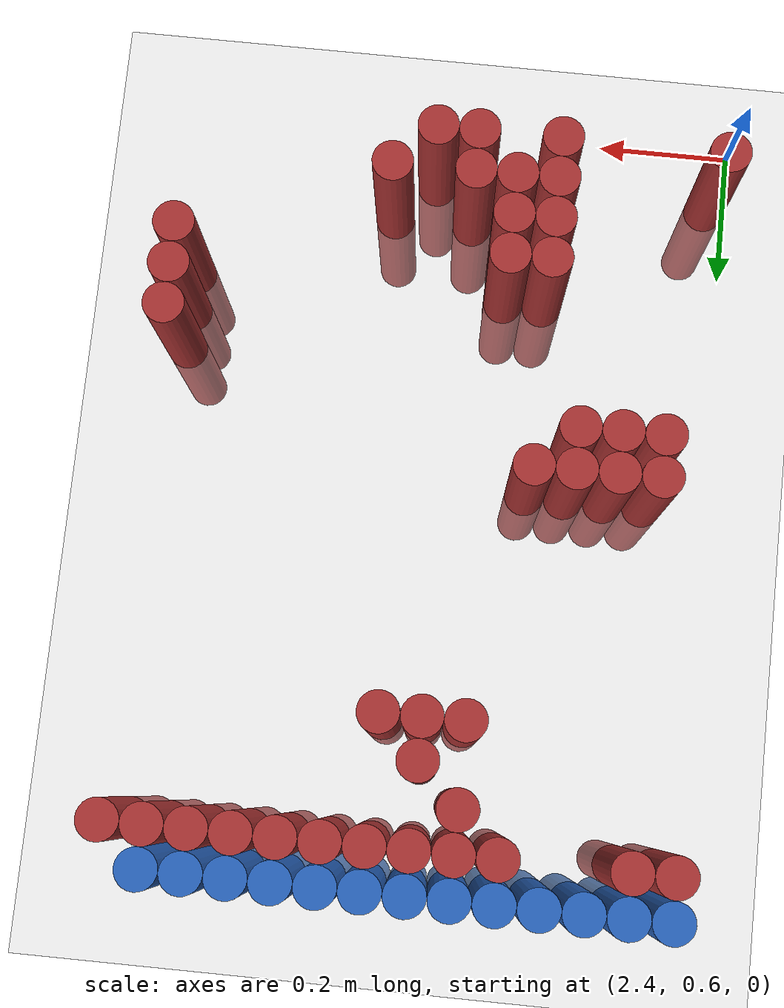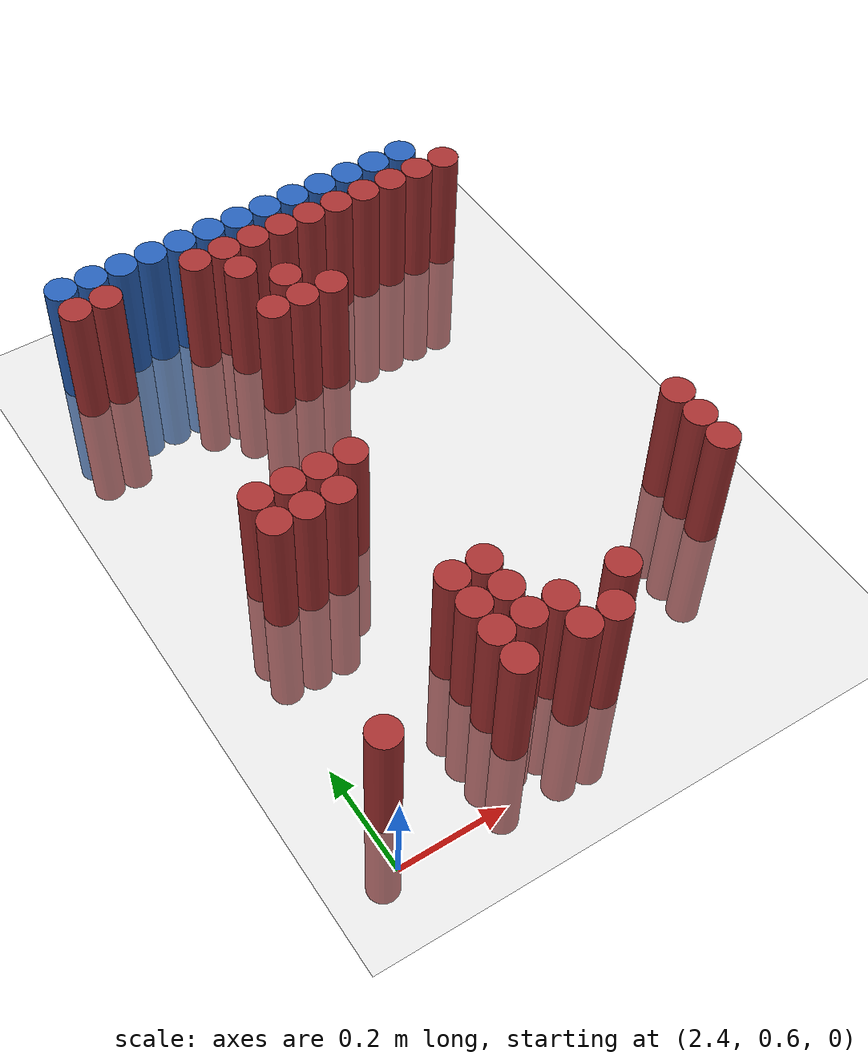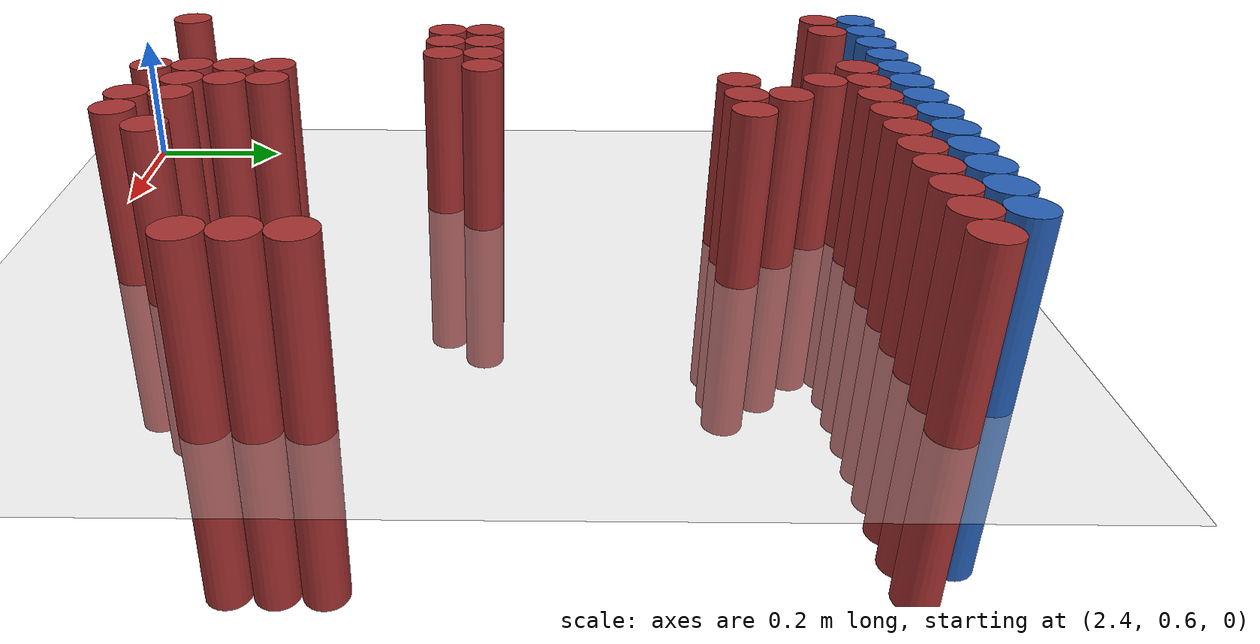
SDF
<sdf version="1.6">
 <world name="default">
  <model name="ground_plane">
   <static>1</static>
   <link name="link">
    <collision name="collision">
     <geometry><plane><normal>0 0 1</normal><size>100 100</size></plane></geometry>
     <surface><friction><ode><mu>100</mu><mu2>50</mu2></ode></friction></surface>
    </collision>
    <visual name="visual">
     <cast_shadows>0</cast_shadows>
     <geometry><plane><normal>0 0 1</normal><size>100 100</size></plane></geometry>
     <material>
      <script><uri>file://media/materials/scripts/gazebo.material</uri><name>Gazebo/Grey</name></script>
     </material>
    </visual>
   </link>
  </model>
  <model name="unit_cylinder_101">
   <static>1</static>
   <pose>2.430000 1.770000 0.000000 0.000000 0.000000 0.000000</pose>
   <link name="link">
    <inertial>
     <mass>1</mass>
     <inertia><ixx>0.145833</ixx><ixy>0</ixy><ixz>0</ixz><iyy>0.145833</iyy><iyz>0</iyz><izz>0.125</izz></inertia>
    </inertial>
    <collision name="collision">
     <geometry><cylinder><radius>0.030000</radius><length>0.5</length></cylinder></geometry>
    </collision>
    <visual name="visual">
     <geometry><cylinder><radius>0.030000</radius><length>0.5</length></cylinder></geometry>
     <material>
      <ambient>0.152000 0.379000 0.720000 1</ambient>
      <diffuse>0.152000 0.379000 0.720000 1</diffuse>
     </material>
     <material>
      <script><name>Gazebo/Grey</name><uri>file://media/materials/scripts/gazebo.material</uri></script>
     </material>
    </visual>
   </link>
  </model>
  <model name="unit_cylinder_102">
   <static>1</static>
   <pose>2.490000 1.770000 0.000000 0.000000 0.000000 0.000000</pose>
   <link name="link">
    <inertial>
     <mass>1</mass>
     <inertia><ixx>0.145833</ixx><ixy>0</ixy><ixz>0</ixz><iyy>0.145833</iyy><iyz>0</iyz><izz>0.125</izz></inertia>
    </inertial>
    <collision name="collision">
     <geometry><cylinder><radius>0.030000</radius><length>0.5</length></cylinder></geometry>
    </collision>
    <visual name="visual">
     <geometry><cylinder><radius>0.030000</radius><length>0.5</length></cylinder></geometry>
     <material>
      <ambient>0.152000 0.379000 0.720000 1</ambient>
      <diffuse>0.152000 0.379000 0.720000 1</diffuse>
     </material>
     <material>
      <script><name>Gazebo/Grey</name><uri>file://media/materials/scripts/gazebo.material</uri></script>
     </material>
    </visual>
   </link>
  </model>
  <model name="unit_cylinder_103">
   <static>1</static>
   <pose>2.550000 1.770000 0.000000 0.000000 0.000000 0.000000</pose>
   <link name="link">
    <inertial>
     <mass>1</mass>
     <inertia><ixx>0.145833</ixx><ixy>0</ixy><ixz>0</ixz><iyy>0.145833</iyy><iyz>0</iyz><izz>0.125</izz></inertia>
    </inertial>
    <collision name="collision">
     <geometry><cylinder><radius>0.030000</radius><length>0.5</length></cylinder></geometry>
    </collision>
    <visual name="visual">
     <geometry><cylinder><radius>0.030000</radius><length>0.5</length></cylinder></geometry>
     <material>
      <ambient>0.152000 0.379000 0.720000 1</ambient>
      <diffuse>0.152000 0.379000 0.720000 1</diffuse>
     </material>
     <material>
      <script><name>Gazebo/Grey</name><uri>file://media/materials/scripts/gazebo.material</uri></script>
     </material>
    </visual>
   </link>
  </model>
  <model name="unit_cylinder_104">
   <static>1</static>
   <pose>2.610000 1.770000 0.000000 0.000000 0.000000 0.000000</pose>
   <link name="link">
    <inertial>
     <mass>1</mass>
     <inertia><ixx>0.145833</ixx><ixy>0</ixy><ixz>0</ixz><iyy>0.145833</iyy><iyz>0</iyz><izz>0.125</izz></inertia>
    </inertial>
    <collision name="collision">
     <geometry><cylinder><radius>0.030000</radius><length>0.5</length></cylinder></geometry>
    </collision>
    <visual name="visual">
     <geometry><cylinder><radius>0.030000</radius><length>0.5</length></cylinder></geometry>
     <material>
      <ambient>0.152000 0.379000 0.720000 1</ambient>
      <diffuse>0.152000 0.379000 0.720000 1</diffuse>
     </material>
     <material>
      <script><name>Gazebo/Grey</name><uri>file://media/materials/scripts/gazebo.material</uri></script>
     </material>
    </visual>
   </link>
  </model>
  <model name="unit_cylinder_105">
   <static>1</static>
   <pose>2.670000 1.770000 0.000000 0.000000 0.000000 0.000000</pose>
   <link name="link">
    <inertial>
     <mass>1</mass>
     <inertia><ixx>0.145833</ixx><ixy>0</ixy><ixz>0</ixz><iyy>0.145833</iyy><iyz>0</iyz><izz>0.125</izz></inertia>
    </inertial>
    <collision name="collision">
     <geometry><cylinder><radius>0.030000</radius><length>0.5</length></cylinder></geometry>
    </collision>
    <visual name="visual">
     <geometry><cylinder><radius>0.030000</radius><length>0.5</length></cylinder></geometry>
     <material>
      <ambient>0.152000 0.379000 0.720000 1</ambient>
      <diffuse>0.152000 0.379000 0.720000 1</diffuse>
     </material>
     <material>
      <script><name>Gazebo/Grey</name><uri>file://media/materials/scripts/gazebo.material</uri></script>
     </material>
    </visual>
   </link>
  </model>
  <model name="unit_cylinder_106">
   <static>1</static>
   <pose>2.730000 1.770000 0.000000 0.000000 0.000000 0.000000</pose>
   <link name="link">
    <inertial>
     <mass>1</mass>
     <inertia><ixx>0.145833</ixx><ixy>0</ixy><ixz>0</ixz><iyy>0.145833</iyy><iyz>0</iyz><izz>0.125</izz></inertia>
    </inertial>
    <collision name="collision">
     <geometry><cylinder><radius>0.030000</radius><length>0.5</length></cylinder></geometry>
    </collision>
    <visual name="visual">
     <geometry><cylinder><radius>0.030000</radius><length>0.5</length></cylinder></geometry>
     <material>
      <ambient>0.152000 0.379000 0.720000 1</ambient>
      <diffuse>0.152000 0.379000 0.720000 1</diffuse>
     </material>
     <material>
      <script><name>Gazebo/Grey</name><uri>file://media/materials/scripts/gazebo.material</uri></script>
     </material>
    </visual>
   </link>
  </model>
  <model name="unit_cylinder_107">
   <static>1</static>
   <pose>2.790000 1.770000 0.000000 0.000000 0.000000 0.000000</pose>
   <link name="link">
    <inertial>
     <mass>1</mass>
     <inertia><ixx>0.145833</ixx><ixy>0</ixy><ixz>0</ixz><iyy>0.145833</iyy><iyz>0</iyz><izz>0.125</izz></inertia>
    </inertial>
    <collision name="collision">
     <geometry><cylinder><radius>0.030000</radius><length>0.5</length></cylinder></geometry>
    </collision>
    <visual name="visual">
     <geometry><cylinder><radius>0.030000</radius><length>0.5</length></cylinder></geometry>
     <material>
      <ambient>0.152000 0.379000 0.720000 1</ambient>
      <diffuse>0.152000 0.379000 0.720000 1</diffuse>
     </material>
     <material>
      <script><name>Gazebo/Grey</name><uri>file://media/materials/scripts/gazebo.material</uri></script>
     </material>
    </visual>
   </link>
  </model>
  <model name="unit_cylinder_108">
   <static>1</static>
   <pose>2.850000 1.770000 0.000000 0.000000 0.000000 0.000000</pose>
   <link name="link">
    <inertial>
     <mass>1</mass>
     <inertia><ixx>0.145833</ixx><ixy>0</ixy><ixz>0</ixz><iyy>0.145833</iyy><iyz>0</iyz><izz>0.125</izz></inertia>
    </inertial>
    <collision name="collision">
     <geometry><cylinder><radius>0.030000</radius><length>0.5</length></cylinder></geometry>
    </collision>
    <visual name="visual">
     <geometry><cylinder><radius>0.030000</radius><length>0.5</length></cylinder></geometry>
     <material>
      <ambient>0.152000 0.379000 0.720000 1</ambient>
      <diffuse>0.152000 0.379000 0.720000 1</diffuse>
     </material>
     <material>
      <script><name>Gazebo/Grey</name><uri>file://media/materials/scripts/gazebo.material</uri></script>
     </material>
    </visual>
   </link>
  </model>
  <model name="unit_cylinder_109">
   <static>1</static>
   <pose>2.910000 1.770000 0.000000 0.000000 0.000000 0.000000</pose>
   <link name="link">
    <inertial>
     <mass>1</mass>
     <inertia><ixx>0.145833</ixx><ixy>0</ixy><ixz>0</ixz><iyy>0.145833</iyy><iyz>0</iyz><izz>0.125</izz></inertia>
    </inertial>
    <collision name="collision">
     <geometry><cylinder><radius>0.030000</radius><length>0.5</length></cylinder></geometry>
    </collision>
    <visual name="visual">
     <geometry><cylinder><radius>0.030000</radius><length>0.5</length></cylinder></geometry>
     <material>
      <ambient>0.152000 0.379000 0.720000 1</ambient>
      <diffuse>0.152000 0.379000 0.720000 1</diffuse>
     </material>
     <material>
      <script><name>Gazebo/Grey</name><uri>file://media/materials/scripts/gazebo.material</uri></script>
     </material>
    </visual>
   </link>
  </model>
  <model name="unit_cylinder_110">
   <static>1</static>
   <pose>2.970000 1.770000 0.000000 0.000000 0.000000 0.000000</pose>
   <link name="link">
    <inertial>
     <mass>1</mass>
     <inertia><ixx>0.145833</ixx><ixy>0</ixy><ixz>0</ixz><iyy>0.145833</iyy><iyz>0</iyz><izz>0.125</izz></inertia>
    </inertial>
    <collision name="collision">
     <geometry><cylinder><radius>0.030000</radius><length>0.5</length></cylinder></geometry>
    </collision>
    <visual name="visual">
     <geometry><cylinder><radius>0.030000</radius><length>0.5</length></cylinder></geometry>
     <material>
      <ambient>0.152000 0.379000 0.720000 1</ambient>
      <diffuse>0.152000 0.379000 0.720000 1</diffuse>
     </material>
     <material>
      <script><name>Gazebo/Grey</name><uri>file://media/materials/scripts/gazebo.material</uri></script>
     </material>
    </visual>
   </link>
  </model>
  <model name="unit_cylinder_111">
   <static>1</static>
   <pose>3.030000 1.770000 0.000000 0.000000 0.000000 0.000000</pose>
   <link name="link">
    <inertial>
     <mass>1</mass>
     <inertia><ixx>0.145833</ixx><ixy>0</ixy><ixz>0</ixz><iyy>0.145833</iyy><iyz>0</iyz><izz>0.125</izz></inertia>
    </inertial>
    <collision name="collision">
     <geometry><cylinder><radius>0.030000</radius><length>0.5</length></cylinder></geometry>
    </collision>
    <visual name="visual">
     <geometry><cylinder><radius>0.030000</radius><length>0.5</length></cylinder></geometry>
     <material>
      <ambient>0.152000 0.379000 0.720000 1</ambient>
      <diffuse>0.152000 0.379000 0.720000 1</diffuse>
     </material>
     <material>
      <script><name>Gazebo/Grey</name><uri>file://media/materials/scripts/gazebo.material</uri></script>
     </material>
    </visual>
   </link>
  </model>
  <model name="unit_cylinder_112">
   <static>1</static>
   <pose>3.090000 1.770000 0.000000 0.000000 0.000000 0.000000</pose>
   <link name="link">
    <inertial>
     <mass>1</mass>
     <inertia><ixx>0.145833</ixx><ixy>0</ixy><ixz>0</ixz><iyy>0.145833</iyy><iyz>0</iyz><izz>0.125</izz></inertia>
    </inertial>
    <collision name="collision">
     <geometry><cylinder><radius>0.030000</radius><length>0.5</length></cylinder></geometry>
    </collision>
    <visual name="visual">
     <geometry><cylinder><radius>0.030000</radius><length>0.5</length></cylinder></geometry>
     <material>
      <ambient>0.152000 0.379000 0.720000 1</ambient>
      <diffuse>0.152000 0.379000 0.720000 1</diffuse>
     </material>
     <material>
      <script><name>Gazebo/Grey</name><uri>file://media/materials/scripts/gazebo.material</uri></script>
     </material>
    </visual>
   </link>
  </model>
  <model name="unit_cylinder_113">
   <static>1</static>
   <pose>3.150000 1.770000 0.000000 0.000000 0.000000 0.000000</pose>
   <link name="link">
    <inertial>
     <mass>1</mass>
     <inertia><ixx>0.145833</ixx><ixy>0</ixy><ixz>0</ixz><iyy>0.145833</iyy><iyz>0</iyz><izz>0.125</izz></inertia>
    </inertial>
    <collision name="collision">
     <geometry><cylinder><radius>0.030000</radius><length>0.5</length></cylinder></geometry>
    </collision>
    <visual name="visual">
     <geometry><cylinder><radius>0.030000</radius><length>0.5</length></cylinder></geometry>
     <material>
      <ambient>0.152000 0.379000 0.720000 1</ambient>
      <diffuse>0.152000 0.379000 0.720000 1</diffuse>
     </material>
     <material>
      <script><name>Gazebo/Grey</name><uri>file://media/materials/scripts/gazebo.material</uri></script>
     </material>
    </visual>
   </link>
  </model>
  <model name="unit_cylinder_130">
   <static>1</static>
   <pose>2.430000 1.710000 0.000000 0.000000 0.000000 0.000000</pose>
   <link name="link">
    <inertial>
     <mass>1</mass>
     <inertia><ixx>0.145833</ixx><ixy>0</ixy><ixz>0</ixz><iyy>0.145833</iyy><iyz>0</iyz><izz>0.125</izz></inertia>
    </inertial>
    <collision name="collision">
     <geometry><cylinder><radius>0.030000</radius><length>0.5</length></cylinder></geometry>
    </collision>
    <visual name="visual">
     <geometry><cylinder><radius>0.030000</radius><length>0.5</length></cylinder></geometry>
     <material>
      <ambient>0.648000 0.192000 0.192000 1</ambient>
      <diffuse>0.648000 0.192000 0.192000 1</diffuse>
     </material>
     <material>
      <script><name>Gazebo/Grey</name><uri>file://media/materials/scripts/gazebo.material</uri></script>
     </material>
    </visual>
   </link>
  </model>
  <model name="unit_cylinder_131">
   <static>1</static>
   <pose>2.490000 1.710000 0.000000 0.000000 0.000000 0.000000</pose>
   <link name="link">
    <inertial>
     <mass>1</mass>
     <inertia><ixx>0.145833</ixx><ixy>0</ixy><ixz>0</ixz><iyy>0.145833</iyy><iyz>0</iyz><izz>0.125</izz></inertia>
    </inertial>
    <collision name="collision">
     <geometry><cylinder><radius>0.030000</radius><length>0.5</length></cylinder></geometry>
    </collision>
    <visual name="visual">
     <geometry><cylinder><radius>0.030000</radius><length>0.5</length></cylinder></geometry>
     <material>
      <ambient>0.648000 0.192000 0.192000 1</ambient>
      <diffuse>0.648000 0.192000 0.192000 1</diffuse>
     </material>
     <material>
      <script><name>Gazebo/Grey</name><uri>file://media/materials/scripts/gazebo.material</uri></script>
     </material>
    </visual>
   </link>
  </model>
  <model name="unit_cylinder_132">
   <static>1</static>
   <pose>2.670000 1.710000 0.000000 0.000000 0.000000 0.000000</pose>
   <link name="link">
    <inertial>
     <mass>1</mass>
     <inertia><ixx>0.145833</ixx><ixy>0</ixy><ixz>0</ixz><iyy>0.145833</iyy><iyz>0</iyz><izz>0.125</izz></inertia>
    </inertial>
    <collision name="collision">
     <geometry><cylinder><radius>0.030000</radius><length>0.5</length></cylinder></geometry>
    </collision>
    <visual name="visual">
     <geometry><cylinder><radius>0.030000</radius><length>0.5</length></cylinder></geometry>
     <material>
      <ambient>0.648000 0.192000 0.192000 1</ambient>
      <diffuse>0.648000 0.192000 0.192000 1</diffuse>
     </material>
     <material>
      <script><name>Gazebo/Grey</name><uri>file://media/materials/scripts/gazebo.material</uri></script>
     </material>
    </visual>
   </link>
  </model>
  <model name="unit_cylinder_133">
   <static>1</static>
   <pose>2.730000 1.710000 0.000000 0.000000 0.000000 0.000000</pose>
   <link name="link">
    <inertial>
     <mass>1</mass>
     <inertia><ixx>0.145833</ixx><ixy>0</ixy><ixz>0</ixz><iyy>0.145833</iyy><iyz>0</iyz><izz>0.125</izz></inertia>
    </inertial>
    <collision name="collision">
     <geometry><cylinder><radius>0.030000</radius><length>0.5</length></cylinder></geometry>
    </collision>
    <visual name="visual">
     <geometry><cylinder><radius>0.030000</radius><length>0.5</length></cylinder></geometry>
     <material>
      <ambient>0.648000 0.192000 0.192000 1</ambient>
      <diffuse>0.648000 0.192000 0.192000 1</diffuse>
     </material>
     <material>
      <script><name>Gazebo/Grey</name><uri>file://media/materials/scripts/gazebo.material</uri></script>
     </material>
    </visual>
   </link>
  </model>
  <model name="unit_cylinder_134">
   <static>1</static>
   <pose>2.790000 1.710000 0.000000 0.000000 0.000000 0.000000</pose>
   <link name="link">
    <inertial>
     <mass>1</mass>
     <inertia><ixx>0.145833</ixx><ixy>0</ixy><ixz>0</ixz><iyy>0.145833</iyy><iyz>0</iyz><izz>0.125</izz></inertia>
    </inertial>
    <collision name="collision">
     <geometry><cylinder><radius>0.030000</radius><length>0.5</length></cylinder></geometry>
    </collision>
    <visual name="visual">
     <geometry><cylinder><radius>0.030000</radius><length>0.5</length></cylinder></geometry>
     <material>
      <ambient>0.648000 0.192000 0.192000 1</ambient>
      <diffuse>0.648000 0.192000 0.192000 1</diffuse>
     </material>
     <material>
      <script><name>Gazebo/Grey</name><uri>file://media/materials/scripts/gazebo.material</uri></script>
     </material>
    </visual>
   </link>
  </model>
  <model name="unit_cylinder_135">
   <static>1</static>
   <pose>2.850000 1.710000 0.000000 0.000000 0.000000 0.000000</pose>
   <link name="link">
    <inertial>
     <mass>1</mass>
     <inertia><ixx>0.145833</ixx><ixy>0</ixy><ixz>0</ixz><iyy>0.145833</iyy><iyz>0</iyz><izz>0.125</izz></inertia>
    </inertial>
    <collision name="collision">
     <geometry><cylinder><radius>0.030000</radius><length>0.5</length></cylinder></geometry>
    </collision>
    <visual name="visual">
     <geometry><cylinder><radius>0.030000</radius><length>0.5</length></cylinder></geometry>
     <material>
      <ambient>0.648000 0.192000 0.192000 1</ambient>
      <diffuse>0.648000 0.192000 0.192000 1</diffuse>
     </material>
     <material>
      <script><name>Gazebo/Grey</name><uri>file://media/materials/scripts/gazebo.material</uri></script>
     </material>
    </visual>
   </link>
  </model>
  <model name="unit_cylinder_136">
   <static>1</static>
   <pose>2.910000 1.710000 0.000000 0.000000 0.000000 0.000000</pose>
   <link name="link">
    <inertial>
     <mass>1</mass>
     <inertia><ixx>0.145833</ixx><ixy>0</ixy><ixz>0</ixz><iyy>0.145833</iyy><iyz>0</iyz><izz>0.125</izz></inertia>
    </inertial>
    <collision name="collision">
     <geometry><cylinder><radius>0.030000</radius><length>0.5</length></cylinder></geometry>
    </collision>
    <visual name="visual">
     <geometry><cylinder><radius>0.030000</radius><length>0.5</length></cylinder></geometry>
     <material>
      <ambient>0.648000 0.192000 0.192000 1</ambient>
      <diffuse>0.648000 0.192000 0.192000 1</diffuse>
     </material>
     <material>
      <script><name>Gazebo/Grey</name><uri>file://media/materials/scripts/gazebo.material</uri></script>
     </material>
    </visual>
   </link>
  </model>
  <model name="unit_cylinder_137">
   <static>1</static>
   <pose>2.970000 1.710000 0.000000 0.000000 0.000000 0.000000</pose>
   <link name="link">
    <inertial>
     <mass>1</mass>
     <inertia><ixx>0.145833</ixx><ixy>0</ixy><ixz>0</ixz><iyy>0.145833</iyy><iyz>0</iyz><izz>0.125</izz></inertia>
    </inertial>
    <collision name="collision">
     <geometry><cylinder><radius>0.030000</radius><length>0.5</length></cylinder></geometry>
    </collision>
    <visual name="visual">
     <geometry><cylinder><radius>0.030000</radius><length>0.5</length></cylinder></geometry>
     <material>
      <ambient>0.648000 0.192000 0.192000 1</ambient>
      <diffuse>0.648000 0.192000 0.192000 1</diffuse>
     </material>
     <material>
      <script><name>Gazebo/Grey</name><uri>file://media/materials/scripts/gazebo.material</uri></script>
     </material>
    </visual>
   </link>
  </model>
  <model name="unit_cylinder_138">
   <static>1</static>
   <pose>3.030000 1.710000 0.000000 0.000000 0.000000 0.000000</pose>
   <link name="link">
    <inertial>
     <mass>1</mass>
     <inertia><ixx>0.145833</ixx><ixy>0</ixy><ixz>0</ixz><iyy>0.145833</iyy><iyz>0</iyz><izz>0.125</izz></inertia>
    </inertial>
    <collision name="collision">
     <geometry><cylinder><radius>0.030000</radius><length>0.5</length></cylinder></geometry>
    </collision>
    <visual name="visual">
     <geometry><cylinder><radius>0.030000</radius><length>0.5</length></cylinder></geometry>
     <material>
      <ambient>0.648000 0.192000 0.192000 1</ambient>
      <diffuse>0.648000 0.192000 0.192000 1</diffuse>
     </material>
     <material>
      <script><name>Gazebo/Grey</name><uri>file://media/materials/scripts/gazebo.material</uri></script>
     </material>
    </visual>
   </link>
  </model>
  <model name="unit_cylinder_139">
   <static>1</static>
   <pose>3.090000 1.710000 0.000000 0.000000 0.000000 0.000000</pose>
   <link name="link">
    <inertial>
     <mass>1</mass>
     <inertia><ixx>0.145833</ixx><ixy>0</ixy><ixz>0</ixz><iyy>0.145833</iyy><iyz>0</iyz><izz>0.125</izz></inertia>
    </inertial>
    <collision name="collision">
     <geometry><cylinder><radius>0.030000</radius><length>0.5</length></cylinder></geometry>
    </collision>
    <visual name="visual">
     <geometry><cylinder><radius>0.030000</radius><length>0.5</length></cylinder></geometry>
     <material>
      <ambient>0.648000 0.192000 0.192000 1</ambient>
      <diffuse>0.648000 0.192000 0.192000 1</diffuse>
     </material>
     <material>
      <script><name>Gazebo/Grey</name><uri>file://media/materials/scripts/gazebo.material</uri></script>
     </material>
    </visual>
   </link>
  </model>
  <model name="unit_cylinder_140">
   <static>1</static>
   <pose>3.150000 1.710000 0.000000 0.000000 0.000000 0.000000</pose>
   <link name="link">
    <inertial>
     <mass>1</mass>
     <inertia><ixx>0.145833</ixx><ixy>0</ixy><ixz>0</ixz><iyy>0.145833</iyy><iyz>0</iyz><izz>0.125</izz></inertia>
    </inertial>
    <collision name="collision">
     <geometry><cylinder><radius>0.030000</radius><length>0.5</length></cylinder></geometry>
    </collision>
    <visual name="visual">
     <geometry><cylinder><radius>0.030000</radius><length>0.5</length></cylinder></geometry>
     <material>
      <ambient>0.648000 0.192000 0.192000 1</ambient>
      <diffuse>0.648000 0.192000 0.192000 1</diffuse>
     </material>
     <material>
      <script><name>Gazebo/Grey</name><uri>file://media/materials/scripts/gazebo.material</uri></script>
     </material>
    </visual>
   </link>
  </model>
  <model name="unit_cylinder_141">
   <static>1</static>
   <pose>3.210000 1.710000 0.000000 0.000000 0.000000 0.000000</pose>
   <link name="link">
    <inertial>
     <mass>1</mass>
     <inertia><ixx>0.145833</ixx><ixy>0</ixy><ixz>0</ixz><iyy>0.145833</iyy><iyz>0</iyz><izz>0.125</izz></inertia>
    </inertial>
    <collision name="collision">
     <geometry><cylinder><radius>0.030000</radius><length>0.5</length></cylinder></geometry>
    </collision>
    <visual name="visual">
     <geometry><cylinder><radius>0.030000</radius><length>0.5</length></cylinder></geometry>
     <material>
      <ambient>0.648000 0.192000 0.192000 1</ambient>
      <diffuse>0.648000 0.192000 0.192000 1</diffuse>
     </material>
     <material>
      <script><name>Gazebo/Grey</name><uri>file://media/materials/scripts/gazebo.material</uri></script>
     </material>
    </visual>
   </link>
  </model>
  <model name="unit_cylinder_145">
   <static>1</static>
   <pose>2.730000 1.650000 0.000000 0.000000 0.000000 0.000000</pose>
   <link name="link">
    <inertial>
     <mass>1</mass>
     <inertia><ixx>0.145833</ixx><ixy>0</ixy><ixz>0</ixz><iyy>0.145833</iyy><iyz>0</iyz><izz>0.125</izz></inertia>
    </inertial>
    <collision name="collision">
     <geometry><cylinder><radius>0.030000</radius><length>0.5</length></cylinder></geometry>
    </collision>
    <visual name="visual">
     <geometry><cylinder><radius>0.030000</radius><length>0.5</length></cylinder></geometry>
     <material>
      <ambient>0.648000 0.192000 0.192000 1</ambient>
      <diffuse>0.648000 0.192000 0.192000 1</diffuse>
     </material>
     <material>
      <script><name>Gazebo/Grey</name><uri>file://media/materials/scripts/gazebo.material</uri></script>
     </material>
    </visual>
   </link>
  </model>
  <model name="unit_cylinder_147">
   <static>1</static>
   <pose>2.790000 1.590000 0.000000 0.000000 0.000000 0.000000</pose>
   <link name="link">
    <inertial>
     <mass>1</mass>
     <inertia><ixx>0.145833</ixx><ixy>0</ixy><ixz>0</ixz><iyy>0.145833</iyy><iyz>0</iyz><izz>0.125</izz></inertia>
    </inertial>
    <collision name="collision">
     <geometry><cylinder><radius>0.030000</radius><length>0.5</length></cylinder></geometry>
    </collision>
    <visual name="visual">
     <geometry><cylinder><radius>0.030000</radius><length>0.5</length></cylinder></geometry>
     <material>
      <ambient>0.648000 0.192000 0.192000 1</ambient>
      <diffuse>0.648000 0.192000 0.192000 1</diffuse>
     </material>
     <material>
      <script><name>Gazebo/Grey</name><uri>file://media/materials/scripts/gazebo.material</uri></script>
     </material>
    </visual>
   </link>
  </model>
  <model name="unit_cylinder_150">
   <static>1</static>
   <pose>2.730000 1.530000 0.000000 0.000000 0.000000 0.000000</pose>
   <link name="link">
    <inertial>
     <mass>1</mass>
     <inertia><ixx>0.145833</ixx><ixy>0</ixy><ixz>0</ixz><iyy>0.145833</iyy><iyz>0</iyz><izz>0.125</izz></inertia>
    </inertial>
    <collision name="collision">
     <geometry><cylinder><radius>0.030000</radius><length>0.5</length></cylinder></geometry>
    </collision>
    <visual name="visual">
     <geometry><cylinder><radius>0.030000</radius><length>0.5</length></cylinder></geometry>
     <material>
      <ambient>0.648000 0.192000 0.192000 1</ambient>
      <diffuse>0.648000 0.192000 0.192000 1</diffuse>
     </material>
     <material>
      <script><name>Gazebo/Grey</name><uri>file://media/materials/scripts/gazebo.material</uri></script>
     </material>
    </visual>
   </link>
  </model>
  <model name="unit_cylinder_151">
   <static>1</static>
   <pose>2.790000 1.530000 0.000000 0.000000 0.000000 0.000000</pose>
   <link name="link">
    <inertial>
     <mass>1</mass>
     <inertia><ixx>0.145833</ixx><ixy>0</ixy><ixz>0</ixz><iyy>0.145833</iyy><iyz>0</iyz><izz>0.125</izz></inertia>
    </inertial>
    <collision name="collision">
     <geometry><cylinder><radius>0.030000</radius><length>0.5</length></cylinder></geometry>
    </collision>
    <visual name="visual">
     <geometry><cylinder><radius>0.030000</radius><length>0.5</length></cylinder></geometry>
     <material>
      <ambient>0.648000 0.192000 0.192000 1</ambient>
      <diffuse>0.648000 0.192000 0.192000 1</diffuse>
     </material>
     <material>
      <script><name>Gazebo/Grey</name><uri>file://media/materials/scripts/gazebo.material</uri></script>
     </material>
    </visual>
   </link>
  </model>
  <model name="unit_cylinder_152">
   <static>1</static>
   <pose>2.850000 1.530000 0.000000 0.000000 0.000000 0.000000</pose>
   <link name="link">
    <inertial>
     <mass>1</mass>
     <inertia><ixx>0.145833</ixx><ixy>0</ixy><ixz>0</ixz><iyy>0.145833</iyy><iyz>0</iyz><izz>0.125</izz></inertia>
    </inertial>
    <collision name="collision">
     <geometry><cylinder><radius>0.030000</radius><length>0.5</length></cylinder></geometry>
    </collision>
    <visual name="visual">
     <geometry><cylinder><radius>0.030000</radius><length>0.5</length></cylinder></geometry>
     <material>
      <ambient>0.648000 0.192000 0.192000 1</ambient>
      <diffuse>0.648000 0.192000 0.192000 1</diffuse>
     </material>
     <material>
      <script><name>Gazebo/Grey</name><uri>file://media/materials/scripts/gazebo.material</uri></script>
     </material>
    </visual>
   </link>
  </model>
  <model name="unit_cylinder_161">
   <static>1</static>
   <pose>2.490000 1.170000 0.000000 0.000000 0.000000 0.000000</pose>
   <link name="link">
    <inertial>
     <mass>1</mass>
     <inertia><ixx>0.145833</ixx><ixy>0</ixy><ixz>0</ixz><iyy>0.145833</iyy><iyz>0</iyz><izz>0.125</izz></inertia>
    </inertial>
    <collision name="collision">
     <geometry><cylinder><radius>0.030000</radius><length>0.5</length></cylinder></geometry>
    </collision>
    <visual name="visual">
     <geometry><cylinder><radius>0.030000</radius><length>0.5</length></cylinder></geometry>
     <material>
      <ambient>0.648000 0.192000 0.192000 1</ambient>
      <diffuse>0.648000 0.192000 0.192000 1</diffuse>
     </material>
     <material>
      <script><name>Gazebo/Grey</name><uri>file://media/materials/scripts/gazebo.material</uri></script>
     </material>
    </visual>
   </link>
  </model>
  <model name="unit_cylinder_162">
   <static>1</static>
   <pose>2.550000 1.170000 0.000000 0.000000 0.000000 0.000000</pose>
   <link name="link">
    <inertial>
     <mass>1</mass>
     <inertia><ixx>0.145833</ixx><ixy>0</ixy><ixz>0</ixz><iyy>0.145833</iyy><iyz>0</iyz><izz>0.125</izz></inertia>
    </inertial>
    <collision name="collision">
     <geometry><cylinder><radius>0.030000</radius><length>0.5</length></cylinder></geometry>
    </collision>
    <visual name="visual">
     <geometry><cylinder><radius>0.030000</radius><length>0.5</length></cylinder></geometry>
     <material>
      <ambient>0.648000 0.192000 0.192000 1</ambient>
      <diffuse>0.648000 0.192000 0.192000 1</diffuse>
     </material>
     <material>
      <script><name>Gazebo/Grey</name><uri>file://media/materials/scripts/gazebo.material</uri></script>
     </material>
    </visual>
   </link>
  </model>
  <model name="unit_cylinder_163">
   <static>1</static>
   <pose>2.610000 1.170000 0.000000 0.000000 0.000000 0.000000</pose>
   <link name="link">
    <inertial>
     <mass>1</mass>
     <inertia><ixx>0.145833</ixx><ixy>0</ixy><ixz>0</ixz><iyy>0.145833</iyy><iyz>0</iyz><izz>0.125</izz></inertia>
    </inertial>
    <collision name="collision">
     <geometry><cylinder><radius>0.030000</radius><length>0.5</length></cylinder></geometry>
    </collision>
    <visual name="visual">
     <geometry><cylinder><radius>0.030000</radius><length>0.5</length></cylinder></geometry>
     <material>
      <ambient>0.648000 0.192000 0.192000 1</ambient>
      <diffuse>0.648000 0.192000 0.192000 1</diffuse>
     </material>
     <material>
      <script><name>Gazebo/Grey</name><uri>file://media/materials/scripts/gazebo.material</uri></script>
     </material>
    </visual>
   </link>
  </model>
  <model name="unit_cylinder_164">
   <static>1</static>
   <pose>2.670000 1.170000 0.000000 0.000000 0.000000 0.000000</pose>
   <link name="link">
    <inertial>
     <mass>1</mass>
     <inertia><ixx>0.145833</ixx><ixy>0</ixy><ixz>0</ixz><iyy>0.145833</iyy><iyz>0</iyz><izz>0.125</izz></inertia>
    </inertial>
    <collision name="collision">
     <geometry><cylinder><radius>0.030000</radius><length>0.5</length></cylinder></geometry>
    </collision>
    <visual name="visual">
     <geometry><cylinder><radius>0.030000</radius><length>0.5</length></cylinder></geometry>
     <material>
      <ambient>0.648000 0.192000 0.192000 1</ambient>
      <diffuse>0.648000 0.192000 0.192000 1</diffuse>
     </material>
     <material>
      <script><name>Gazebo/Grey</name><uri>file://media/materials/scripts/gazebo.material</uri></script>
     </material>
    </visual>
   </link>
  </model>
  <model name="unit_cylinder_167">
   <static>1</static>
   <pose>2.490000 1.110000 0.000000 0.000000 0.000000 0.000000</pose>
   <link name="link">
    <inertial>
     <mass>1</mass>
     <inertia><ixx>0.145833</ixx><ixy>0</ixy><ixz>0</ixz><iyy>0.145833</iyy><iyz>0</iyz><izz>0.125</izz></inertia>
    </inertial>
    <collision name="collision">
     <geometry><cylinder><radius>0.030000</radius><length>0.5</length></cylinder></geometry>
    </collision>
    <visual name="visual">
     <geometry><cylinder><radius>0.030000</radius><length>0.5</length></cylinder></geometry>
     <material>
      <ambient>0.648000 0.192000 0.192000 1</ambient>
      <diffuse>0.648000 0.192000 0.192000 1</diffuse>
     </material>
     <material>
      <script><name>Gazebo/Grey</name><uri>file://media/materials/scripts/gazebo.material</uri></script>
     </material>
    </visual>
   </link>
  </model>
  <model name="unit_cylinder_168">
   <static>1</static>
   <pose>2.550000 1.110000 0.000000 0.000000 0.000000 0.000000</pose>
   <link name="link">
    <inertial>
     <mass>1</mass>
     <inertia><ixx>0.145833</ixx><ixy>0</ixy><ixz>0</ixz><iyy>0.145833</iyy><iyz>0</iyz><izz>0.125</izz></inertia>
    </inertial>
    <collision name="collision">
     <geometry><cylinder><radius>0.030000</radius><length>0.5</length></cylinder></geometry>
    </collision>
    <visual name="visual">
     <geometry><cylinder><radius>0.030000</radius><length>0.5</length></cylinder></geometry>
     <material>
      <ambient>0.648000 0.192000 0.192000 1</ambient>
      <diffuse>0.648000 0.192000 0.192000 1</diffuse>
     </material>
     <material>
      <script><name>Gazebo/Grey</name><uri>file://media/materials/scripts/gazebo.material</uri></script>
     </material>
    </visual>
   </link>
  </model>
  <model name="unit_cylinder_169">
   <static>1</static>
   <pose>2.610000 1.110000 0.000000 0.000000 0.000000 0.000000</pose>
   <link name="link">
    <inertial>
     <mass>1</mass>
     <inertia><ixx>0.145833</ixx><ixy>0</ixy><ixz>0</ixz><iyy>0.145833</iyy><iyz>0</iyz><izz>0.125</izz></inertia>
    </inertial>
    <collision name="collision">
     <geometry><cylinder><radius>0.030000</radius><length>0.5</length></cylinder></geometry>
    </collision>
    <visual name="visual">
     <geometry><cylinder><radius>0.030000</radius><length>0.5</length></cylinder></geometry>
     <material>
      <ambient>0.648000 0.192000 0.192000 1</ambient>
      <diffuse>0.648000 0.192000 0.192000 1</diffuse>
     </material>
     <material>
      <script><name>Gazebo/Grey</name><uri>file://media/materials/scripts/gazebo.material</uri></script>
     </material>
    </visual>
   </link>
  </model>
  <model name="unit_cylinder_176">
   <static>1</static>
   <pose>3.210000 0.990000 0.000000 0.000000 0.000000 0.000000</pose>
   <link name="link">
    <inertial>
     <mass>1</mass>
     <inertia><ixx>0.145833</ixx><ixy>0</ixy><ixz>0</ixz><iyy>0.145833</iyy><iyz>0</iyz><izz>0.125</izz></inertia>
    </inertial>
    <collision name="collision">
     <geometry><cylinder><radius>0.030000</radius><length>0.5</length></cylinder></geometry>
    </collision>
    <visual name="visual">
     <geometry><cylinder><radius>0.030000</radius><length>0.5</length></cylinder></geometry>
     <material>
      <ambient>0.648000 0.192000 0.192000 1</ambient>
      <diffuse>0.648000 0.192000 0.192000 1</diffuse>
     </material>
     <material>
      <script><name>Gazebo/Grey</name><uri>file://media/materials/scripts/gazebo.material</uri></script>
     </material>
    </visual>
   </link>
  </model>
  <model name="unit_cylinder_181">
   <static>1</static>
   <pose>3.210000 0.930000 0.000000 0.000000 0.000000 0.000000</pose>
   <link name="link">
    <inertial>
     <mass>1</mass>
     <inertia><ixx>0.145833</ixx><ixy>0</ixy><ixz>0</ixz><iyy>0.145833</iyy><iyz>0</iyz><izz>0.125</izz></inertia>
    </inertial>
    <collision name="collision">
     <geometry><cylinder><radius>0.030000</radius><length>0.5</length></cylinder></geometry>
    </collision>
    <visual name="visual">
     <geometry><cylinder><radius>0.030000</radius><length>0.5</length></cylinder></geometry>
     <material>
      <ambient>0.648000 0.192000 0.192000 1</ambient>
      <diffuse>0.648000 0.192000 0.192000 1</diffuse>
     </material>
     <material>
      <script><name>Gazebo/Grey</name><uri>file://media/materials/scripts/gazebo.material</uri></script>
     </material>
    </visual>
   </link>
  </model>
  <model name="unit_cylinder_188">
   <static>1</static>
   <pose>2.670000 0.870000 0.000000 0.000000 0.000000 0.000000</pose>
   <link name="link">
    <inertial>
     <mass>1</mass>
     <inertia><ixx>0.145833</ixx><ixy>0</ixy><ixz>0</ixz><iyy>0.145833</iyy><iyz>0</iyz><izz>0.125</izz></inertia>
    </inertial>
    <collision name="collision">
     <geometry><cylinder><radius>0.030000</radius><length>0.5</length></cylinder></geometry>
    </collision>
    <visual name="visual">
     <geometry><cylinder><radius>0.030000</radius><length>0.5</length></cylinder></geometry>
     <material>
      <ambient>0.648000 0.192000 0.192000 1</ambient>
      <diffuse>0.648000 0.192000 0.192000 1</diffuse>
     </material>
     <material>
      <script><name>Gazebo/Grey</name><uri>file://media/materials/scripts/gazebo.material</uri></script>
     </material>
    </visual>
   </link>
  </model>
  <model name="unit_cylinder_189">
   <static>1</static>
   <pose>2.730000 0.870000 0.000000 0.000000 0.000000 0.000000</pose>
   <link name="link">
    <inertial>
     <mass>1</mass>
     <inertia><ixx>0.145833</ixx><ixy>0</ixy><ixz>0</ixz><iyy>0.145833</iyy><iyz>0</iyz><izz>0.125</izz></inertia>
    </inertial>
    <collision name="collision">
     <geometry><cylinder><radius>0.030000</radius><length>0.5</length></cylinder></geometry>
    </collision>
    <visual name="visual">
     <geometry><cylinder><radius>0.030000</radius><length>0.5</length></cylinder></geometry>
     <material>
      <ambient>0.648000 0.192000 0.192000 1</ambient>
      <diffuse>0.648000 0.192000 0.192000 1</diffuse>
     </material>
     <material>
      <script><name>Gazebo/Grey</name><uri>file://media/materials/scripts/gazebo.material</uri></script>
     </material>
    </visual>
   </link>
  </model>
  <model name="unit_cylinder_190">
   <static>1</static>
   <pose>3.210000 0.870000 0.000000 0.000000 0.000000 0.000000</pose>
   <link name="link">
    <inertial>
     <mass>1</mass>
     <inertia><ixx>0.145833</ixx><ixy>0</ixy><ixz>0</ixz><iyy>0.145833</iyy><iyz>0</iyz><izz>0.125</izz></inertia>
    </inertial>
    <collision name="collision">
     <geometry><cylinder><radius>0.030000</radius><length>0.5</length></cylinder></geometry>
    </collision>
    <visual name="visual">
     <geometry><cylinder><radius>0.030000</radius><length>0.5</length></cylinder></geometry>
     <material>
      <ambient>0.648000 0.192000 0.192000 1</ambient>
      <diffuse>0.648000 0.192000 0.192000 1</diffuse>
     </material>
     <material>
      <script><name>Gazebo/Grey</name><uri>file://media/materials/scripts/gazebo.material</uri></script>
     </material>
    </visual>
   </link>
  </model>
  <model name="unit_cylinder_195">
   <static>1</static>
   <pose>2.670000 0.810000 0.000000 0.000000 0.000000 0.000000</pose>
   <link name="link">
    <inertial>
     <mass>1</mass>
     <inertia><ixx>0.145833</ixx><ixy>0</ixy><ixz>0</ixz><iyy>0.145833</iyy><iyz>0</iyz><izz>0.125</izz></inertia>
    </inertial>
    <collision name="collision">
     <geometry><cylinder><radius>0.030000</radius><length>0.5</length></cylinder></geometry>
    </collision>
    <visual name="visual">
     <geometry><cylinder><radius>0.030000</radius><length>0.5</length></cylinder></geometry>
     <material>
      <ambient>0.648000 0.192000 0.192000 1</ambient>
      <diffuse>0.648000 0.192000 0.192000 1</diffuse>
     </material>
     <material>
      <script><name>Gazebo/Grey</name><uri>file://media/materials/scripts/gazebo.material</uri></script>
     </material>
    </visual>
   </link>
  </model>
  <model name="unit_cylinder_196">
   <static>1</static>
   <pose>2.730000 0.810000 0.000000 0.000000 0.000000 0.000000</pose>
   <link name="link">
    <inertial>
     <mass>1</mass>
     <inertia><ixx>0.145833</ixx><ixy>0</ixy><ixz>0</ixz><iyy>0.145833</iyy><iyz>0</iyz><izz>0.125</izz></inertia>
    </inertial>
    <collision name="collision">
     <geometry><cylinder><radius>0.030000</radius><length>0.5</length></cylinder></geometry>
    </collision>
    <visual name="visual">
     <geometry><cylinder><radius>0.030000</radius><length>0.5</length></cylinder></geometry>
     <material>
      <ambient>0.648000 0.192000 0.192000 1</ambient>
      <diffuse>0.648000 0.192000 0.192000 1</diffuse>
     </material>
     <material>
      <script><name>Gazebo/Grey</name><uri>file://media/materials/scripts/gazebo.material</uri></script>
     </material>
    </visual>
   </link>
  </model>
  <model name="unit_cylinder_205">
   <static>1</static>
   <pose>2.670000 0.750000 0.000000 0.000000 0.000000 0.000000</pose>
   <link name="link">
    <inertial>
     <mass>1</mass>
     <inertia><ixx>0.145833</ixx><ixy>0</ixy><ixz>0</ixz><iyy>0.145833</iyy><iyz>0</iyz><izz>0.125</izz></inertia>
    </inertial>
    <collision name="collision">
     <geometry><cylinder><radius>0.030000</radius><length>0.5</length></cylinder></geometry>
    </collision>
    <visual name="visual">
     <geometry><cylinder><radius>0.030000</radius><length>0.5</length></cylinder></geometry>
     <material>
      <ambient>0.648000 0.192000 0.192000 1</ambient>
      <diffuse>0.648000 0.192000 0.192000 1</diffuse>
     </material>
     <material>
      <script><name>Gazebo/Grey</name><uri>file://media/materials/scripts/gazebo.material</uri></script>
     </material>
    </visual>
   </link>
  </model>
  <model name="unit_cylinder_206">
   <static>1</static>
   <pose>2.730000 0.750000 0.000000 0.000000 0.000000 0.000000</pose>
   <link name="link">
    <inertial>
     <mass>1</mass>
     <inertia><ixx>0.145833</ixx><ixy>0</ixy><ixz>0</ixz><iyy>0.145833</iyy><iyz>0</iyz><izz>0.125</izz></inertia>
    </inertial>
    <collision name="collision">
     <geometry><cylinder><radius>0.030000</radius><length>0.5</length></cylinder></geometry>
    </collision>
    <visual name="visual">
     <geometry><cylinder><radius>0.030000</radius><length>0.5</length></cylinder></geometry>
     <material>
      <ambient>0.648000 0.192000 0.192000 1</ambient>
      <diffuse>0.648000 0.192000 0.192000 1</diffuse>
     </material>
     <material>
      <script><name>Gazebo/Grey</name><uri>file://media/materials/scripts/gazebo.material</uri></script>
     </material>
    </visual>
   </link>
  </model>
  <model name="unit_cylinder_207">
   <static>1</static>
   <pose>2.790000 0.750000 0.000000 0.000000 0.000000 0.000000</pose>
   <link name="link">
    <inertial>
     <mass>1</mass>
     <inertia><ixx>0.145833</ixx><ixy>0</ixy><ixz>0</ixz><iyy>0.145833</iyy><iyz>0</iyz><izz>0.125</izz></inertia>
    </inertial>
    <collision name="collision">
     <geometry><cylinder><radius>0.030000</radius><length>0.5</length></cylinder></geometry>
    </collision>
    <visual name="visual">
     <geometry><cylinder><radius>0.030000</radius><length>0.5</length></cylinder></geometry>
     <material>
      <ambient>0.648000 0.192000 0.192000 1</ambient>
      <diffuse>0.648000 0.192000 0.192000 1</diffuse>
     </material>
     <material>
      <script><name>Gazebo/Grey</name><uri>file://media/materials/scripts/gazebo.material</uri></script>
     </material>
    </visual>
   </link>
  </model>
  <model name="unit_cylinder_208">
   <static>1</static>
   <pose>2.910000 0.750000 0.000000 0.000000 0.000000 0.000000</pose>
   <link name="link">
    <inertial>
     <mass>1</mass>
     <inertia><ixx>0.145833</ixx><ixy>0</ixy><ixz>0</ixz><iyy>0.145833</iyy><iyz>0</iyz><izz>0.125</izz></inertia>
    </inertial>
    <collision name="collision">
     <geometry><cylinder><radius>0.030000</radius><length>0.5</length></cylinder></geometry>
    </collision>
    <visual name="visual">
     <geometry><cylinder><radius>0.030000</radius><length>0.5</length></cylinder></geometry>
     <material>
      <ambient>0.648000 0.192000 0.192000 1</ambient>
      <diffuse>0.648000 0.192000 0.192000 1</diffuse>
     </material>
     <material>
      <script><name>Gazebo/Grey</name><uri>file://media/materials/scripts/gazebo.material</uri></script>
     </material>
    </visual>
   </link>
  </model>
  <model name="unit_cylinder_216">
   <static>1</static>
   <pose>2.430000 0.690000 0.000000 0.000000 0.000000 0.000000</pose>
   <link name="link">
    <inertial>
     <mass>1</mass>
     <inertia><ixx>0.145833</ixx><ixy>0</ixy><ixz>0</ixz><iyy>0.145833</iyy><iyz>0</iyz><izz>0.125</izz></inertia>
    </inertial>
    <collision name="collision">
     <geometry><cylinder><radius>0.030000</radius><length>0.5</length></cylinder></geometry>
    </collision>
    <visual name="visual">
     <geometry><cylinder><radius>0.030000</radius><length>0.5</length></cylinder></geometry>
     <material>
      <ambient>0.648000 0.192000 0.192000 1</ambient>
      <diffuse>0.648000 0.192000 0.192000 1</diffuse>
     </material>
     <material>
      <script><name>Gazebo/Grey</name><uri>file://media/materials/scripts/gazebo.material</uri></script>
     </material>
    </visual>
   </link>
  </model>
  <model name="unit_cylinder_217">
   <static>1</static>
   <pose>2.670000 0.690000 0.000000 0.000000 0.000000 0.000000</pose>
   <link name="link">
    <inertial>
     <mass>1</mass>
     <inertia><ixx>0.145833</ixx><ixy>0</ixy><ixz>0</ixz><iyy>0.145833</iyy><iyz>0</iyz><izz>0.125</izz></inertia>
    </inertial>
    <collision name="collision">
     <geometry><cylinder><radius>0.030000</radius><length>0.5</length></cylinder></geometry>
    </collision>
    <visual name="visual">
     <geometry><cylinder><radius>0.030000</radius><length>0.5</length></cylinder></geometry>
     <material>
      <ambient>0.648000 0.192000 0.192000 1</ambient>
      <diffuse>0.648000 0.192000 0.192000 1</diffuse>
     </material>
     <material>
      <script><name>Gazebo/Grey</name><uri>file://media/materials/scripts/gazebo.material</uri></script>
     </material>
    </visual>
   </link>
  </model>
  <model name="unit_cylinder_218">
   <static>1</static>
   <pose>2.790000 0.690000 0.000000 0.000000 0.000000 0.000000</pose>
   <link name="link">
    <inertial>
     <mass>1</mass>
     <inertia><ixx>0.145833</ixx><ixy>0</ixy><ixz>0</ixz><iyy>0.145833</iyy><iyz>0</iyz><izz>0.125</izz></inertia>
    </inertial>
    <collision name="collision">
     <geometry><cylinder><radius>0.030000</radius><length>0.5</length></cylinder></geometry>
    </collision>
    <visual name="visual">
     <geometry><cylinder><radius>0.030000</radius><length>0.5</length></cylinder></geometry>
     <material>
      <ambient>0.648000 0.192000 0.192000 1</ambient>
      <diffuse>0.648000 0.192000 0.192000 1</diffuse>
     </material>
     <material>
      <script><name>Gazebo/Grey</name><uri>file://media/materials/scripts/gazebo.material</uri></script>
     </material>
    </visual>
   </link>
  </model>
  <model name="unit_cylinder_219">
   <static>1</static>
   <pose>2.850000 0.690000 0.000000 0.000000 0.000000 0.000000</pose>
   <link name="link">
    <inertial>
     <mass>1</mass>
     <inertia><ixx>0.145833</ixx><ixy>0</ixy><ixz>0</ixz><iyy>0.145833</iyy><iyz>0</iyz><izz>0.125</izz></inertia>
    </inertial>
    <collision name="collision">
     <geometry><cylinder><radius>0.030000</radius><length>0.5</length></cylinder></geometry>
    </collision>
    <visual name="visual">
     <geometry><cylinder><radius>0.030000</radius><length>0.5</length></cylinder></geometry>
     <material>
      <ambient>0.648000 0.192000 0.192000 1</ambient>
      <diffuse>0.648000 0.192000 0.192000 1</diffuse>
     </material>
     <material>
      <script><name>Gazebo/Grey</name><uri>file://media/materials/scripts/gazebo.material</uri></script>
     </material>
    </visual>
   </link>
  </model>
 </world>
</sdf>
